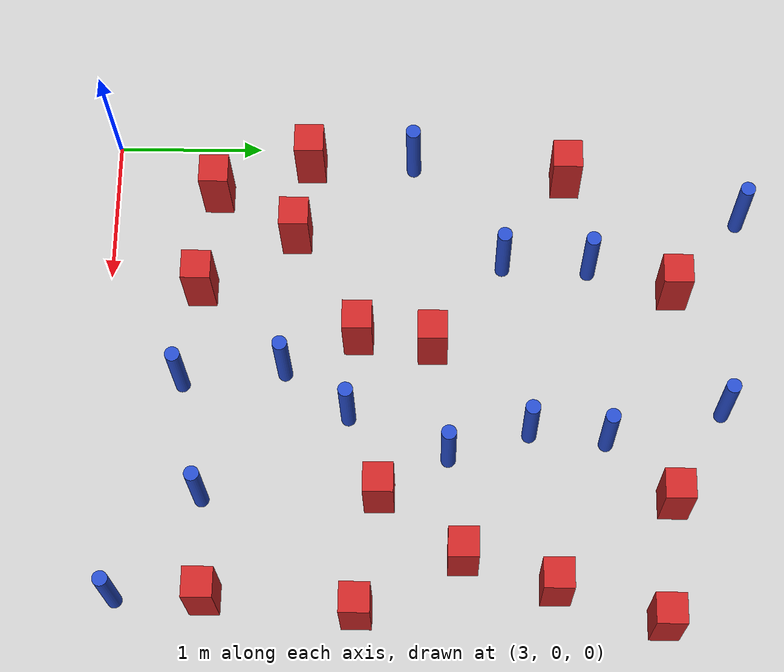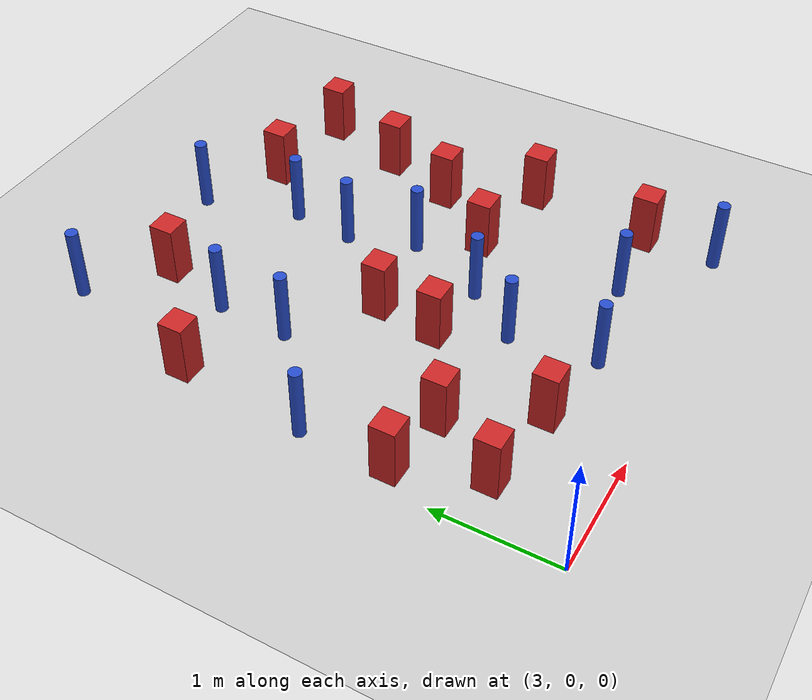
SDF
<sdf version="1.6">
 <world name="default">
  <model name="ground_plane">
   <static>1</static>
   <link name="link">
    <collision name="collision">
     <geometry><plane><normal>0 0 1</normal><size>100 100</size></plane></geometry>
     <surface><friction><ode><mu>100</mu><mu2>50</mu2></ode></friction></surface>
    </collision>
    <visual name="visual">
     <cast_shadows>0</cast_shadows>
     <geometry><plane><normal>0 0 1</normal><size>100 100</size></plane></geometry>
     <material>
      <ambient>1.0 1.0 1.0 1.0</ambient>
      <diffuse>0.8 0.8 0.8 1.0</diffuse>
      <specular>0.01 0.01 0.01 1.000000</specular>
     </material>
    </visual>
   </link>
  </model>
  <model name="pole_obstacle1">
   <static>true</static>
   <pose>4.70910394843 1.24014191663 2.88873142074e-08 -9.90536689445e-09 4.60219948999e-07 -1.20965994956e-07</pose>
   <link name="link">
    <pose>0 0 0.3 0 -0 0</pose>
    <inertial>
     <mass>1</mass>
     <inertia><ixx>0.145833</ixx><ixy>0</ixy><ixz>0</ixz><iyy>0.145833</iyy><iyz>0</iyz><izz>0.125</izz></inertia>
    </inertial>
    <collision name="collision">
     <geometry><cylinder><radius>0.05</radius><length>.6</length></cylinder></geometry>
    </collision>
    <visual name="visual">
     <geometry><cylinder><radius>0.05</radius><length>.6</length></cylinder></geometry>
     <material>
      <script><name>Gazebo/Blue</name><uri>file://media/materials/scripts/gazebo.material</uri></script>
     </material>
    </visual>
   </link>
  </model>
  <model name="square_post_obstacle20">
   <static>true</static>
   <pose>5.60389424884 3.84199440956 8.22691968438e-08 7.2212513382e-06 -7.54495500217e-07 2.29674213826e-05</pose>
   <link name="link">
    <pose>0 0 0.25 0 -0 0</pose>
    <inertial>
     <mass>100</mass>
     <inertia>
      <ixx>0.166667</ixx>
      <ixy>0</ixy>
      <ixz>0</ixz>
      <iyy>0.166667</iyy>
      <iyz>0</iyz>
      <izz>0.166667</izz>
     </inertia>
    </inertial>
    <collision name="collision"><geometry><box><size>.2 .2 .5</size></box></geometry></collision>
    <visual name="visual">
     <geometry><box><size>.2 .2 .5</size></box></geometry>
     <material>
      <script><name>Gazebo/Red</name><uri>file://media/materials/scripts/gazebo.material</uri></script>
     </material>
    </visual>
   </link>
  </model>
  <model name="square_post_obstacle23">
   <static>true</static>
   <pose>3.39282739825 0.729039512999 8.22691968438e-08 7.2212513382e-06 -7.54495500217e-07 2.29674213826e-05</pose>
   <link name="link">
    <pose>0 0 0.25 0 -0 0</pose>
    <inertial>
     <mass>100</mass>
     <inertia>
      <ixx>0.166667</ixx>
      <ixy>0</ixy>
      <ixz>0</ixz>
      <iyy>0.166667</iyy>
      <iyz>0</iyz>
      <izz>0.166667</izz>
     </inertia>
    </inertial>
    <collision name="collision"><geometry><box><size>.2 .2 .5</size></box></geometry></collision>
    <visual name="visual">
     <geometry><box><size>.2 .2 .5</size></box></geometry>
     <material>
      <script><name>Gazebo/Red</name><uri>file://media/materials/scripts/gazebo.material</uri></script>
     </material>
    </visual>
   </link>
  </model>
  <model name="pole_obstacle18">
   <static>true</static>
   <pose>3.91504674664 2.71842902857 2.88873142074e-08 -9.90536690232e-09 4.6021994898e-07 -1.20965994968e-07</pose>
   <link name="link">
    <pose>0 0 0.3 0 -0 0</pose>
    <inertial>
     <mass>1</mass>
     <inertia><ixx>0.145833</ixx><ixy>0</ixy><ixz>0</ixz><iyy>0.145833</iyy><iyz>0</iyz><izz>0.125</izz></inertia>
    </inertial>
    <collision name="collision">
     <geometry><cylinder><radius>0.05</radius><length>.6</length></cylinder></geometry>
    </collision>
    <visual name="visual">
     <geometry><cylinder><radius>0.05</radius><length>.6</length></cylinder></geometry>
     <material>
      <script><name>Gazebo/Blue</name><uri>file://media/materials/scripts/gazebo.material</uri></script>
     </material>
    </visual>
   </link>
  </model>
  <model name="pole_obstacle44">
   <static>true</static>
   <pose>4.97521513268 4.19667120968 2.88873142074e-08 -9.90536690842e-09 4.60219948965e-07 -1.20965994976e-07</pose>
   <link name="link">
    <pose>0 0 0.3 0 -0 0</pose>
    <inertial>
     <mass>1</mass>
     <inertia><ixx>0.145833</ixx><ixy>0</ixy><ixz>0</ixz><iyy>0.145833</iyy><iyz>0</iyz><izz>0.125</izz></inertia>
    </inertial>
    <collision name="collision">
     <geometry><cylinder><radius>0.05</radius><length>.6</length></cylinder></geometry>
    </collision>
    <visual name="visual">
     <geometry><cylinder><radius>0.05</radius><length>.6</length></cylinder></geometry>
     <material>
      <script><name>Gazebo/Blue</name><uri>file://media/materials/scripts/gazebo.material</uri></script>
     </material>
    </visual>
   </link>
  </model>
  <model name="pole_obstacle57">
   <static>true</static>
   <pose>5.18897466718 3.41056651322 2.88873142074e-08 -9.90536690245e-09 4.6021994898e-07 -1.20965994966e-07</pose>
   <link name="link">
    <pose>0 0 0.3 0 -0 0</pose>
    <inertial>
     <mass>1</mass>
     <inertia><ixx>0.145833</ixx><ixy>0</ixy><ixz>0</ixz><iyy>0.145833</iyy><iyz>0</iyz><izz>0.125</izz></inertia>
    </inertial>
    <collision name="collision">
     <geometry><cylinder><radius>0.05</radius><length>.6</length></cylinder></geometry>
    </collision>
    <visual name="visual">
     <geometry><cylinder><radius>0.05</radius><length>.6</length></cylinder></geometry>
     <material>
      <script><name>Gazebo/Blue</name><uri>file://media/materials/scripts/gazebo.material</uri></script>
     </material>
    </visual>
   </link>
  </model>
  <model name="square_post_obstacle62">
   <static>true</static>
   <pose>4.10886648462 0.646720444745 8.22691968438e-08 7.2212513382e-06 -7.54495500217e-07 2.29674213826e-05</pose>
   <link name="link">
    <pose>0 0 0.25 0 -0 0</pose>
    <inertial>
     <mass>100</mass>
     <inertia>
      <ixx>0.166667</ixx>
      <ixy>0</ixy>
      <ixz>0</ixz>
      <iyy>0.166667</iyy>
      <iyz>0</iyz>
      <izz>0.166667</izz>
     </inertia>
    </inertial>
    <collision name="collision"><geometry><box><size>.2 .2 .5</size></box></geometry></collision>
    <visual name="visual">
     <geometry><box><size>.2 .2 .5</size></box></geometry>
     <material>
      <script><name>Gazebo/Red</name><uri>file://media/materials/scripts/gazebo.material</uri></script>
     </material>
    </visual>
   </link>
  </model>
  <model name="pole_obstacle86">
   <static>true</static>
   <pose>4.79495675127 0.54372738592 2.88873142074e-08 -9.90536689326e-09 4.60219949001e-07 -1.20965994954e-07</pose>
   <link name="link">
    <pose>0 0 0.3 0 -0 0</pose>
    <inertial>
     <mass>1</mass>
     <inertia><ixx>0.145833</ixx><ixy>0</ixy><ixz>0</ixz><iyy>0.145833</iyy><iyz>0</iyz><izz>0.125</izz></inertia>
    </inertial>
    <collision name="collision">
     <geometry><cylinder><radius>0.05</radius><length>.6</length></cylinder></geometry>
    </collision>
    <visual name="visual">
     <geometry><cylinder><radius>0.05</radius><length>.6</length></cylinder></geometry>
     <material>
      <script><name>Gazebo/Blue</name><uri>file://media/materials/scripts/gazebo.material</uri></script>
     </material>
    </visual>
   </link>
  </model>
  <model name="pole_obstacle88">
   <static>true</static>
   <pose>3.93982172109 3.31167060398 2.88873142074e-08 -9.90536690232e-09 4.6021994898e-07 -1.20965994968e-07</pose>
   <link name="link">
    <pose>0 0 0.3 0 -0 0</pose>
    <inertial>
     <mass>1</mass>
     <inertia><ixx>0.145833</ixx><ixy>0</ixy><ixz>0</ixz><iyy>0.145833</iyy><iyz>0</iyz><izz>0.125</izz></inertia>
    </inertial>
    <collision name="collision">
     <geometry><cylinder><radius>0.05</radius><length>.6</length></cylinder></geometry>
    </collision>
    <visual name="visual">
     <geometry><cylinder><radius>0.05</radius><length>.6</length></cylinder></geometry>
     <material>
      <script><name>Gazebo/Blue</name><uri>file://media/materials/scripts/gazebo.material</uri></script>
     </material>
    </visual>
   </link>
  </model>
  <model name="pole_obstacle93">
   <static>true</static>
   <pose>5.02648648349 1.67899417795 2.88873142074e-08 -9.90536689445e-09 4.60219948999e-07 -1.20965994956e-07</pose>
   <link name="link">
    <pose>0 0 0.3 0 -0 0</pose>
    <inertial>
     <mass>1</mass>
     <inertia><ixx>0.145833</ixx><ixy>0</ixy><ixz>0</ixz><iyy>0.145833</iyy><iyz>0</iyz><izz>0.125</izz></inertia>
    </inertial>
    <collision name="collision">
     <geometry><cylinder><radius>0.05</radius><length>.6</length></cylinder></geometry>
    </collision>
    <visual name="visual">
     <geometry><cylinder><radius>0.05</radius><length>.6</length></cylinder></geometry>
     <material>
      <script><name>Gazebo/Blue</name><uri>file://media/materials/scripts/gazebo.material</uri></script>
     </material>
    </visual>
   </link>
  </model>
  <model name="pole_obstacle97">
   <static>true</static>
   <pose>5.13372845619 2.89532559758 2.88873142074e-08 -9.90536690245e-09 4.6021994898e-07 -1.20965994966e-07</pose>
   <link name="link">
    <pose>0 0 0.3 0 -0 0</pose>
    <inertial>
     <mass>1</mass>
     <inertia><ixx>0.145833</ixx><ixy>0</ixy><ixz>0</ixz><iyy>0.145833</iyy><iyz>0</iyz><izz>0.125</izz></inertia>
    </inertial>
    <collision name="collision">
     <geometry><cylinder><radius>0.05</radius><length>.6</length></cylinder></geometry>
    </collision>
    <visual name="visual">
     <geometry><cylinder><radius>0.05</radius><length>.6</length></cylinder></geometry>
     <material>
      <script><name>Gazebo/Blue</name><uri>file://media/materials/scripts/gazebo.material</uri></script>
     </material>
    </visual>
   </link>
  </model>
  <model name="square_post_obstacle100">
   <static>true</static>
   <pose>5.58198037593 1.89903868807 8.22691968438e-08 7.2212513382e-06 -7.54495500217e-07 2.29674213826e-05</pose>
   <link name="link">
    <pose>0 0 0.25 0 -0 0</pose>
    <inertial>
     <mass>100</mass>
     <inertia>
      <ixx>0.166667</ixx>
      <ixy>0</ixy>
      <ixz>0</ixz>
      <iyy>0.166667</iyy>
      <iyz>0</iyz>
      <izz>0.166667</izz>
     </inertia>
    </inertial>
    <collision name="collision"><geometry><box><size>.2 .2 .5</size></box></geometry></collision>
    <visual name="visual">
     <geometry><box><size>.2 .2 .5</size></box></geometry>
     <material>
      <script><name>Gazebo/Red</name><uri>file://media/materials/scripts/gazebo.material</uri></script>
     </material>
    </visual>
   </link>
  </model>
  <model name="square_post_obstacle101">
   <static>true</static>
   <pose>6.4160098529 3.75522987881 8.22691968438e-08 7.2212513382e-06 -7.54495500217e-07 2.29674213826e-05</pose>
   <link name="link">
    <pose>0 0 0.25 0 -0 0</pose>
    <inertial>
     <mass>100</mass>
     <inertia>
      <ixx>0.166667</ixx>
      <ixy>0</ixy>
      <ixz>0</ixz>
      <iyy>0.166667</iyy>
      <iyz>0</iyz>
      <izz>0.166667</izz>
     </inertia>
    </inertial>
    <collision name="collision"><geometry><box><size>.2 .2 .5</size></box></geometry></collision>
    <visual name="visual">
     <geometry><box><size>.2 .2 .5</size></box></geometry>
     <material>
      <script><name>Gazebo/Red</name><uri>file://media/materials/scripts/gazebo.material</uri></script>
     </material>
    </visual>
   </link>
  </model>
  <model name="square_post_obstacle110">
   <static>true</static>
   <pose>3.25560990237 3.15832452246 8.22691968438e-08 7.2212513382e-06 -7.54495500217e-07 2.29674213826e-05</pose>
   <link name="link">
    <pose>0 0 0.25 0 -0 0</pose>
    <inertial>
     <mass>100</mass>
     <inertia>
      <ixx>0.166667</ixx>
      <ixy>0</ixy>
      <ixz>0</ixz>
      <iyy>0.166667</iyy>
      <iyz>0</iyz>
      <izz>0.166667</izz>
     </inertia>
    </inertial>
    <collision name="collision"><geometry><box><size>.2 .2 .5</size></box></geometry></collision>
    <visual name="visual">
     <geometry><box><size>.2 .2 .5</size></box></geometry>
     <material>
      <script><name>Gazebo/Red</name><uri>file://media/materials/scripts/gazebo.material</uri></script>
     </material>
    </visual>
   </link>
  </model>
  <model name="pole_obstacle121">
   <static>true</static>
   <pose>5.60468850741 0.715431302196 2.88873142074e-08 -9.90536689837e-09 4.60219948989e-07 -1.2096599496e-07</pose>
   <link name="link">
    <pose>0 0 0.3 0 -0 0</pose>
    <inertial>
     <mass>1</mass>
     <inertia><ixx>0.145833</ixx><ixy>0</ixy><ixz>0</ixz><iyy>0.145833</iyy><iyz>0</iyz><izz>0.125</izz></inertia>
    </inertial>
    <collision name="collision">
     <geometry><cylinder><radius>0.05</radius><length>.6</length></cylinder></geometry>
    </collision>
    <visual name="visual">
     <geometry><cylinder><radius>0.05</radius><length>.6</length></cylinder></geometry>
     <material>
      <script><name>Gazebo/Blue</name><uri>file://media/materials/scripts/gazebo.material</uri></script>
     </material>
    </visual>
   </link>
  </model>
  <model name="pole_obstacle125">
   <static>true</static>
   <pose>3.1519315099 2.09421471783 2.88873142074e-08 -9.90536690232e-09 4.6021994898e-07 -1.20965994968e-07</pose>
   <link name="link">
    <pose>0 0 0.3 0 -0 0</pose>
    <inertial>
     <mass>1</mass>
     <inertia><ixx>0.145833</ixx><ixy>0</ixy><ixz>0</ixz><iyy>0.145833</iyy><iyz>0</iyz><izz>0.125</izz></inertia>
    </inertial>
    <collision name="collision">
     <geometry><cylinder><radius>0.05</radius><length>.6</length></cylinder></geometry>
    </collision>
    <visual name="visual">
     <geometry><cylinder><radius>0.05</radius><length>.6</length></cylinder></geometry>
     <material>
      <script><name>Gazebo/Blue</name><uri>file://media/materials/scripts/gazebo.material</uri></script>
     </material>
    </visual>
   </link>
  </model>
  <model name="square_post_obstacle115">
   <static>true</static>
   <pose>6.00321309069 2.45282853837 8.22691968438e-08 7.2212513382e-06 -7.54495500217e-07 2.29674213826e-05</pose>
   <link name="link">
    <pose>0 0 0.25 0 -0 0</pose>
    <inertial>
     <mass>100</mass>
     <inertia>
      <ixx>0.166667</ixx>
      <ixy>0</ixy>
      <ixz>0</ixz>
      <iyy>0.166667</iyy>
      <iyz>0</iyz>
      <izz>0.166667</izz>
     </inertia>
    </inertial>
    <collision name="collision"><geometry><box><size>.2 .2 .5</size></box></geometry></collision>
    <visual name="visual">
     <geometry><box><size>.2 .2 .5</size></box></geometry>
     <material>
      <script><name>Gazebo/Red</name><uri>file://media/materials/scripts/gazebo.material</uri></script>
     </material>
    </visual>
   </link>
  </model>
  <model name="square_post_obstacle150">
   <static>true</static>
   <pose>6.36851767852 1.76621751565 8.22691968438e-08 7.2212513382e-06 -7.54495500217e-07 2.29674213826e-05</pose>
   <link name="link">
    <pose>0 0 0.25 0 -0 0</pose>
    <inertial>
     <mass>100</mass>
     <inertia>
      <ixx>0.166667</ixx>
      <ixy>0</ixy>
      <ixz>0</ixz>
      <iyy>0.166667</iyy>
      <iyz>0</iyz>
      <izz>0.166667</izz>
     </inertia>
    </inertial>
    <collision name="collision"><geometry><box><size>.2 .2 .5</size></box></geometry></collision>
    <visual name="visual">
     <geometry><box><size>.2 .2 .5</size></box></geometry>
     <material>
      <script><name>Gazebo/Red</name><uri>file://media/materials/scripts/gazebo.material</uri></script>
     </material>
    </visual>
   </link>
  </model>
  <model name="square_post_obstacle165">
   <static>true</static>
   <pose>3.70641250822 1.28781084 8.22691968438e-08 7.2212513382e-06 -7.54495500217e-07 2.29674213826e-05</pose>
   <link name="link">
    <pose>0 0 0.25 0 -0 0</pose>
    <inertial>
     <mass>100</mass>
     <inertia>
      <ixx>0.166667</ixx>
      <ixy>0</ixy>
      <ixz>0</ixz>
      <iyy>0.166667</iyy>
      <iyz>0</iyz>
      <izz>0.166667</izz>
     </inertia>
    </inertial>
    <collision name="collision"><geometry><box><size>.2 .2 .5</size></box></geometry></collision>
    <visual name="visual">
     <geometry><box><size>.2 .2 .5</size></box></geometry>
     <material>
      <script><name>Gazebo/Red</name><uri>file://media/materials/scripts/gazebo.material</uri></script>
     </material>
    </visual>
   </link>
  </model>
  <model name="pole_obstacle178">
   <static>true</static>
   <pose>5.31190927713 2.35344213634 2.88873142074e-08 -9.90536690245e-09 4.6021994898e-07 -1.20965994966e-07</pose>
   <link name="link">
    <pose>0 0 0.3 0 -0 0</pose>
    <inertial>
     <mass>1</mass>
     <inertia><ixx>0.145833</ixx><ixy>0</ixy><ixz>0</ixz><iyy>0.145833</iyy><iyz>0</iyz><izz>0.125</izz></inertia>
    </inertial>
    <collision name="collision">
     <geometry><cylinder><radius>0.05</radius><length>.6</length></cylinder></geometry>
    </collision>
    <visual name="visual">
     <geometry><cylinder><radius>0.05</radius><length>.6</length></cylinder></geometry>
     <material>
      <script><name>Gazebo/Blue</name><uri>file://media/materials/scripts/gazebo.material</uri></script>
     </material>
    </visual>
   </link>
  </model>
  <model name="square_post_obstacle169">
   <static>true</static>
   <pose>4.52607801896 2.24142619134 8.22691968438e-08 7.2212513382e-06 -7.54495500217e-07 2.29674213826e-05</pose>
   <link name="link">
    <pose>0 0 0.25 0 -0 0</pose>
    <inertial>
     <mass>100</mass>
     <inertia>
      <ixx>0.166667</ixx>
      <ixy>0</ixy>
      <ixz>0</ixz>
      <iyy>0.166667</iyy>
      <iyz>0</iyz>
      <izz>0.166667</izz>
     </inertia>
    </inertial>
    <collision name="collision"><geometry><box><size>.2 .2 .5</size></box></geometry></collision>
    <visual name="visual">
     <geometry><box><size>.2 .2 .5</size></box></geometry>
     <material>
      <script><name>Gazebo/Red</name><uri>file://media/materials/scripts/gazebo.material</uri></script>
     </material>
    </visual>
   </link>
  </model>
  <model name="square_post_obstacle194">
   <static>true</static>
   <pose>3.15325661246 1.37361826493 8.22691968438e-08 7.2212513382e-06 -7.54495500217e-07 2.29674213826e-05</pose>
   <link name="link">
    <pose>0 0 0.25 0 -0 0</pose>
    <inertial>
     <mass>100</mass>
     <inertia>
      <ixx>0.166667</ixx>
      <ixy>0</ixy>
      <ixz>0</ixz>
      <iyy>0.166667</iyy>
      <iyz>0</iyz>
      <izz>0.166667</izz>
     </inertia>
    </inertial>
    <collision name="collision"><geometry><box><size>.2 .2 .5</size></box></geometry></collision>
    <visual name="visual">
     <geometry><box><size>.2 .2 .5</size></box></geometry>
     <material>
      <script><name>Gazebo/Red</name><uri>file://media/materials/scripts/gazebo.material</uri></script>
     </material>
    </visual>
   </link>
  </model>
  <model name="pole_obstacle192">
   <static>true</static>
   <pose>3.56125488435 4.36119049291 2.88873142074e-08 -9.90536689859e-09 4.60219948989e-07 -1.20965994961e-07</pose>
   <link name="link">
    <pose>0 0 0.3 0 -0 0</pose>
    <inertial>
     <mass>1</mass>
     <inertia><ixx>0.145833</ixx><ixy>0</ixy><ixz>0</ixz><iyy>0.145833</iyy><iyz>0</iyz><izz>0.125</izz></inertia>
    </inertial>
    <collision name="collision">
     <geometry><cylinder><radius>0.05</radius><length>.6</length></cylinder></geometry>
    </collision>
    <visual name="visual">
     <geometry><cylinder><radius>0.05</radius><length>.6</length></cylinder></geometry>
     <material>
      <script><name>Gazebo/Blue</name><uri>file://media/materials/scripts/gazebo.material</uri></script>
     </material>
    </visual>
   </link>
  </model>
  <model name="pole_obstacle211">
   <static>true</static>
   <pose>6.29227926913 0.185579086717 2.88873142074e-08 -9.90536689378e-09 4.60219949e-07 -1.20965994955e-07</pose>
   <link name="link">
    <pose>0 0 0.3 0 -0 0</pose>
    <inertial>
     <mass>1</mass>
     <inertia><ixx>0.145833</ixx><ixy>0</ixy><ixz>0</ixz><iyy>0.145833</iyy><iyz>0</iyz><izz>0.125</izz></inertia>
    </inertial>
    <collision name="collision">
     <geometry><cylinder><radius>0.05</radius><length>.6</length></cylinder></geometry>
    </collision>
    <visual name="visual">
     <geometry><cylinder><radius>0.05</radius><length>.6</length></cylinder></geometry>
     <material>
      <script><name>Gazebo/Blue</name><uri>file://media/materials/scripts/gazebo.material</uri></script>
     </material>
    </visual>
   </link>
  </model>
  <model name="square_post_obstacle214">
   <static>true</static>
   <pose>4.10452059555 3.88535603357 8.22691968438e-08 7.2212513382e-06 -7.54495500217e-07 2.29674213826e-05</pose>
   <link name="link">
    <pose>0 0 0.25 0 -0 0</pose>
    <inertial>
     <mass>100</mass>
     <inertia>
      <ixx>0.166667</ixx>
      <ixy>0</ixy>
      <ixz>0</ixz>
      <iyy>0.166667</iyy>
      <iyz>0</iyz>
      <izz>0.166667</izz>
     </inertia>
    </inertial>
    <collision name="collision"><geometry><box><size>.2 .2 .5</size></box></geometry></collision>
    <visual name="visual">
     <geometry><box><size>.2 .2 .5</size></box></geometry>
     <material>
      <script><name>Gazebo/Red</name><uri>file://media/materials/scripts/gazebo.material</uri></script>
     </material>
    </visual>
   </link>
  </model>
  <model name="square_post_obstacle216">
   <static>true</static>
   <pose>6.19741903152 3.05465178468 8.22691968438e-08 7.2212513382e-06 -7.54495500217e-07 2.29674213826e-05</pose>
   <link name="link">
    <pose>0 0 0.25 0 -0 0</pose>
    <inertial>
     <mass>100</mass>
     <inertia>
      <ixx>0.166667</ixx>
      <ixy>0</ixy>
      <ixz>0</ixz>
      <iyy>0.166667</iyy>
      <iyz>0</iyz>
      <izz>0.166667</izz>
     </inertia>
    </inertial>
    <collision name="collision"><geometry><box><size>.2 .2 .5</size></box></geometry></collision>
    <visual name="visual">
     <geometry><box><size>.2 .2 .5</size></box></geometry>
     <material>
      <script><name>Gazebo/Red</name><uri>file://media/materials/scripts/gazebo.material</uri></script>
     </material>
    </visual>
   </link>
  </model>
  <model name="square_post_obstacle218">
   <static>true</static>
   <pose>4.45920649912 1.73582531739 8.22691968438e-08 7.2212513382e-06 -7.54495500217e-07 2.29674213826e-05</pose>
   <link name="link">
    <pose>0 0 0.25 0 -0 0</pose>
    <inertial>
     <mass>100</mass>
     <inertia>
      <ixx>0.166667</ixx>
      <ixy>0</ixy>
      <ixz>0</ixz>
      <iyy>0.166667</iyy>
      <iyz>0</iyz>
      <izz>0.166667</izz>
     </inertia>
    </inertial>
    <collision name="collision"><geometry><box><size>.2 .2 .5</size></box></geometry></collision>
    <visual name="visual">
     <geometry><box><size>.2 .2 .5</size></box></geometry>
     <material>
      <script><name>Gazebo/Red</name><uri>file://media/materials/scripts/gazebo.material</uri></script>
     </material>
    </visual>
   </link>
  </model>
  <model name="square_post_obstacle219">
   <static>true</static>
   <pose>6.28164546744 0.776749171997 8.22691968438e-08 7.2212513382e-06 -7.54495500217e-07 2.29674213826e-05</pose>
   <link name="link">
    <pose>0 0 0.25 0 -0 0</pose>
    <inertial>
     <mass>100</mass>
     <inertia>
      <ixx>0.166667</ixx>
      <ixy>0</ixy>
      <ixz>0</ixz>
      <iyy>0.166667</iyy>
      <iyz>0</iyz>
      <izz>0.166667</izz>
     </inertia>
    </inertial>
    <collision name="collision"><geometry><box><size>.2 .2 .5</size></box></geometry></collision>
    <visual name="visual">
     <geometry><box><size>.2 .2 .5</size></box></geometry>
     <material>
      <script><name>Gazebo/Red</name><uri>file://media/materials/scripts/gazebo.material</uri></script>
     </material>
    </visual>
   </link>
  </model>
 </world>
</sdf>
